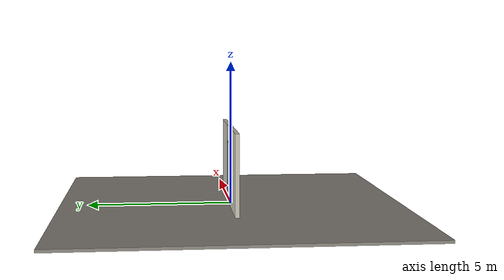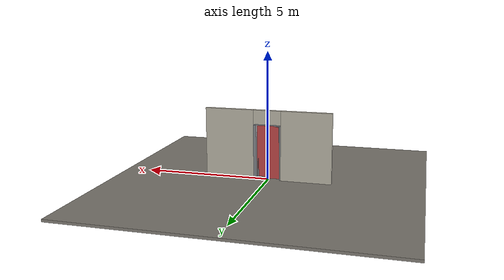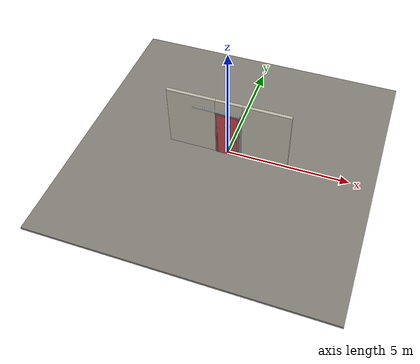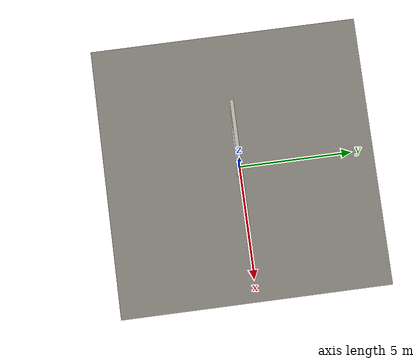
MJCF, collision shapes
<?xml version="1.0" ?>
<mujoco model="db0966_sliding_single_full">
  <compiler angle="radian" meshdir="../../hardware" texturedir="../../textures" autolimits="true" inertiafromgeom="false"/>
  <option timestep="0.002" integrator="implicitfast" cone="elliptic" impratio="10" noslip_iterations="3">
    <flag multiccd="enable"/>
  </option>
  <size memory="16M"/>
  <default>
    <geom condim="4" solref="0.005 1" solimp="0.95 0.99 0.001"/>
    <joint solreflimit="0.005 1" solimplimit="0.95 0.99 0.001"/>
    <tendon solreflimit="0.005 1"/>
    <equality solref="0.002 1"/>
  </default>
  <visual>
    <headlight ambient="0.4 0.4 0.4" diffuse="0.7 0.7 0.7" specular="0.2 0.2 0.2"/>
    <quality shadowsize="4096"/>
    <map znear="0.01" zfar="60"/>
  </visual>
  <asset>
    <mesh name="pull_1e5d69a91a" file="pull_1e5d69a91a.obj"/>
    <material name="mat_floor" rgba="0.55 0.53 0.5 1" specular="0.2" shininess="0.15" reflectance="0"/>
    <material name="mat_wall" rgba="0.78 0.76 0.7 1" specular="0.2" shininess="0.1" reflectance="0"/>
    <material name="mat_frame" rgba="0.55 0.56 0.58 1" specular="0.8" shininess="0.55" reflectance="0.4"/>
    <material name="mat_track" rgba="0.8 0.81 0.83 1" specular="0.8" shininess="0.6" reflectance="0.4"/>
    <material name="mat_leaf" rgba="0.5 0.51 0.53 1" specular="0.23" shininess="0.61" reflectance="0.02"/>
    <material name="mat_roller" rgba="0.65 0.66 0.68 1" specular="0.74" shininess="0.5" reflectance="0.36"/>
    <material name="mat_op_stainless" rgba="0.75 0.76 0.77 1" specular="0.8" shininess="0.65" reflectance="0.4"/>
    <material name="mat_op_steel_galvanized" rgba="0.65 0.66 0.68 1" specular="0.74" shininess="0.5" reflectance="0.36"/>
    <material name="mat_padlock" rgba="0.85 0.66 0.3 1" specular="0.8" shininess="0.75" reflectance="0.4"/>
    <material name="mat_hook" rgba="0.75 0.76 0.77 1" specular="0.8" shininess="0.65" reflectance="0.4"/>
    <material name="mat_placard" rgba="0.95 0.75 0.05 1" specular="0.2" shininess="0.5" reflectance="0"/>
    <texture name="skybox" type="skybox" builtin="gradient" rgb1="0.6 0.7 0.85" rgb2="0.9 0.92 0.95" width="256" height="256"/>
  </asset>
  <worldbody>
    <light name="sun" pos="1.5 -2.5 4" dir="-0.3 0.5 -0.8" directional="true" diffuse="0.8 0.8 0.8" specular="0.3 0.3 0.3" castshadow="true"/>
    <light name="fill" pos="-1.5 2.5 3" dir="0.3 -0.5 -0.7" directional="true" diffuse="0.35 0.35 0.4" castshadow="false"/>
    <camera name="robot_view" pos="0 -2.644375 1.817425" xyaxes="1 0 0 0 0.26963 0.962964" fovy="52"/>
    <camera name="far_view" pos="0 2.644375 1.817425" xyaxes="-1 0 0 0 -0.26963 0.962964" fovy="52"/>
    <camera name="iso" pos="2.009725 -2.221275 2.240525" xyaxes="0.741536 0.670913 0 -0.242917 0.268487 0.932151" fovy="46"/>
    <camera name="detail_handle" pos="0.547 -0.9775 1.23" xyaxes="0.97561 0.219512 0 -0.070934 0.315262 0.94635" fovy="38"/>
    <geom name="floor" type="box" size="6 6 0.05" pos="0 0 -0.05" material="mat_floor" group="0" contype="1" conaffinity="1" friction="0.8 0.005 0.0001" density="2400"/>
    <geom name="wall_left" type="box" size="0.994 0.0725 1.377" pos="-1.506 0 1.377" material="mat_wall" group="0" contype="1" conaffinity="1" friction="0.6 0.005 0.0001" density="800"/>
    <geom name="wall_right" type="box" size="0.964 0.0725 1.377" pos="1.536 0 1.377" material="mat_wall" group="0" contype="1" conaffinity="1" friction="0.6 0.005 0.0001" density="800"/>
    <geom name="wall_header" type="box" size="0.542 0.0725 0.2775" pos="0.03 0 2.4765" material="mat_wall" group="0" contype="1" conaffinity="1" friction="0.6 0.005 0.0001" density="800"/>
    <geom name="jamb_l" type="box" size="0.0225 0.0725 1.077" pos="-0.4895 0 1.077" material="mat_frame" group="0" contype="1" conaffinity="1" friction="0.6 0.005 0.0001" density="300"/>
    <geom name="jamb_head" type="box" size="0.512 0.0725 0.0225" pos="0 0 2.1765" material="mat_frame" group="0" contype="1" conaffinity="1" friction="0.6 0.005 0.0001" density="300"/>
    <geom name="track_header" type="box" size="0.964 0.025 0.04" pos="-0.457 -0.105 2.239" material="mat_track" group="0" contype="1" conaffinity="1" friction="0.6 0.005 0.0001" density="2700"/>
    <geom name="leaf_staple_leg_n" type="box" size="0.003 0.0025 0.0365" pos="0.497 -0.109 1.1375" quat="0.707107 0.707107 0 0" material="mat_op_steel_galvanized" group="0" contype="1" conaffinity="1" friction="0.6 0.005 0.0001" density="7800"/>
    <geom name="leaf_staple_leg_p" type="box" size="0.003 0.0025 0.0365" pos="0.497 -0.109 1.1625" quat="0.707107 0.707107 0 0" material="mat_op_steel_galvanized" group="0" contype="1" conaffinity="1" friction="0.6 0.005 0.0001" density="7800"/>
    <geom name="leaf_staple_bridge" type="box" size="0.003 0.015 0.0025" pos="0.497 -0.143 1.15" quat="0.707107 0.707107 0 0" material="mat_op_steel_galvanized" group="0" contype="1" conaffinity="1" friction="0.6 0.005 0.0001" density="7800"/>
    <geom name="leaf_staple_base" type="box" size="0.016 0.021 0.001" pos="0.497 -0.0735 1.15" quat="0.707107 0.707107 0 0" material="mat_op_steel_galvanized" group="1" contype="0" conaffinity="0" density="7800"/>
    <geom name="jamb_latch_0" type="box" size="0.0525 0.0725 1.077" pos="0.5195 0 1.077" material="mat_frame" group="0" contype="1" conaffinity="1" friction="0.6 0.005 0.0001" density="300"/>
    <geom name="track_header_bracket" type="box" size="0.7712 0.00425 0.032" pos="-0.457 -0.07625 2.239" material="mat_hook" group="1" contype="0" conaffinity="0" density="7850"/>
    <site name="approach_point" pos="0 -1.5 0" quat="1 0 0 0" size="0.05" rgba="0.2 0.9 0.2 0.5" group="4"/>
    <site name="goal_point" pos="0 1.5 0" quat="1 0 0 0" size="0.05" rgba="0.2 0.9 0.2 0.5" group="4"/>
    <site name="door_plane_center" pos="0 0 1.077" quat="1 0 0 0" size="0.02" rgba="0.2 0.9 0.2 0.5" group="4"/>
    <body name="leaf" pos="0 -0.105 0">
      <inertial pos="0.002344 -0.000357 1.08879" mass="85.332981" quat="0.500282 0.499334 -0.500615 0.499768" diaginertia="6.013552258 32.785934532 38.786839054"/>
      <joint name="leaf_slide" type="slide" axis="-1 0 0" limited="true" range="0 0.914" damping="6.272719" frictionloss="58.661479" armature="0.5"/>
      <geom name="leaf_slab_col" type="box" size="0.457 0.0125 1.067" pos="0 0 1.079" material="mat_leaf" group="3" contype="1" conaffinity="1" rgba="0.8 0.3 0.3 0.25" friction="0.45 0.005 0.0001" density="1"/>
      <geom name="leaf_rail_b" type="box" size="0.457 0.0125 0.03" pos="0 0 0.042" material="mat_leaf" group="1" contype="0" conaffinity="0" density="1"/>
      <geom name="leaf_rail_t" type="box" size="0.457 0.0125 0.03" pos="0 0 2.116" material="mat_leaf" group="1" contype="0" conaffinity="0" density="1"/>
      <geom name="leaf_stile_h" type="box" size="0.03 0.0125 1.067" pos="-0.427 0 1.079" material="mat_leaf" group="1" contype="0" conaffinity="0" density="1"/>
      <geom name="leaf_stile_l" type="box" size="0.03 0.0125 1.067" pos="0.427 0 1.079" material="mat_leaf" group="1" contype="0" conaffinity="0" density="1"/>
      <geom name="leaf_bar_0" type="cylinder" size="0.0095 1.007" pos="-0.330833 0 1.079" material="mat_leaf" group="1" contype="0" conaffinity="0" density="1"/>
      <geom name="leaf_bar_1" type="cylinder" size="0.0095 1.007" pos="-0.1985 0 1.079" material="mat_leaf" group="1" contype="0" conaffinity="0" density="1"/>
      <geom name="leaf_bar_2" type="cylinder" size="0.0095 1.007" pos="-0.066167 0 1.079" material="mat_leaf" group="1" contype="0" conaffinity="0" density="1"/>
      <geom name="leaf_bar_3" type="cylinder" size="0.0095 1.007" pos="0.066167 0 1.079" material="mat_leaf" group="1" contype="0" conaffinity="0" density="1"/>
      <geom name="leaf_bar_4" type="cylinder" size="0.0095 1.007" pos="0.1985 0 1.079" material="mat_leaf" group="1" contype="0" conaffinity="0" density="1"/>
      <geom name="leaf_bar_5" type="cylinder" size="0.0095 1.007" pos="0.330833 0 1.079" material="mat_leaf" group="1" contype="0" conaffinity="0" density="1"/>
      <geom name="leaf_crossbar_33" type="box" size="0.397 0.01 0.02" pos="0 0 0.71622" material="mat_leaf" group="1" contype="0" conaffinity="0" density="1"/>
      <geom name="leaf_crossbar_66" type="box" size="0.397 0.01 0.02" pos="0 0 1.42044" material="mat_leaf" group="1" contype="0" conaffinity="0" density="1"/>
      <geom name="leaf_carrier_0" type="box" size="0.02 0.005 0.0545" pos="-0.337 0 2.1405" material="mat_roller" group="1" contype="0" conaffinity="0" density="7850"/>
      <geom name="leaf_carrier_wheel_0" type="cylinder" size="0.014 0.006" pos="-0.337 0 2.185" quat="0.707107 -0.707107 0 0" material="mat_roller" group="1" contype="0" conaffinity="0" density="7850"/>
      <geom name="leaf_carrier_1" type="box" size="0.02 0.005 0.0545" pos="0.337 0 2.1405" material="mat_roller" group="1" contype="0" conaffinity="0" density="7850"/>
      <geom name="leaf_carrier_wheel_1" type="cylinder" size="0.014 0.006" pos="0.337 0 2.185" quat="0.707107 -0.707107 0 0" material="mat_roller" group="1" contype="0" conaffinity="0" density="7850"/>
      <geom name="leaf_pull_n" type="mesh" mesh="pull_1e5d69a91a" pos="0.367 -0.0125 0.95" quat="0.707107 0.707107 0 0" material="mat_op_stainless" group="1" contype="0" conaffinity="0" density="3000"/>
      <geom name="leaf_pull_col_n" type="capsule" size="0.0095 0.08" pos="0.367 -0.0725 0.95" material="mat_op_stainless" group="3" contype="1" conaffinity="1" rgba="0.8 0.3 0.3 0.25" friction="0.7 0.01 0.0001" density="3000"/>
      <geom name="leaf_hasp_plate" type="box" size="0.024 0.0215 0.003" pos="0.377 -0.0155 1.15" quat="0.707107 0.707107 0 0" material="mat_op_steel_galvanized" group="1" contype="0" conaffinity="0" density="7800"/>
      <geom name="warning_placard" type="box" size="0.11 0.001 0.08" pos="0 -0.0135 1.6125" material="mat_placard" group="2" contype="0" conaffinity="0" density="1000"/>
      <site name="leaf_pull_grip_n" pos="0.367 -0.0725 0.95" quat="1 0 0 0" size="0.012" rgba="0.2 0.9 0.2 0.5" group="4"/>
      <site name="leaf_edge_mid" pos="0.457 0 1.079" quat="1 0 0 0" size="0.02" rgba="0.2 0.9 0.2 0.5" group="4"/>
      <body name="leaf_hasp" pos="0.397 -0.0185 1.15">
        <inertial pos="-0.047959 -0.014989 0" mass="0.121392" quat="0.695946 -0.695946 -0.125136 0.125136" diaginertia="0.000013765 0.000190104 0.000203357"/>
        <joint name="leaf_hasp_hinge" type="hinge" axis="0 0 -1" limited="true" range="0 2.9" damping="0.02" frictionloss="0.05" armature="0.005" ref="2.8"/>
        <geom name="leaf_hasp_strap" type="box" size="0.061 0.0175 0.0015" pos="-0.057978 -0.019021 0" quat="0.120185 0.120185 -0.696818 -0.696818" material="mat_op_steel_galvanized" group="0" contype="1" conaffinity="1" friction="0.6 0.005 0.0001" density="7800"/>
        <geom name="leaf_hasp_knuckle" type="cylinder" size="0.0045 0.0215" pos="-0.00134 0.003769 0" quat="0 0.169967 -0.98545 0" material="mat_op_steel_galvanized" group="1" contype="0" conaffinity="0" density="7850"/>
        <site name="leaf_hasp_grip" pos="-0.099457 -0.024747 0" quat="0.169967 0 0 -0.98545" size="0.01" rgba="0.2 0.9 0.2 0.5" group="4"/>
      </body>
    </body>
  </worldbody>
  <sensor>
    <jointpos name="leaf_slide_pos" joint="leaf_slide"/>
    <jointvel name="leaf_slide_vel" joint="leaf_slide"/>
    <jointpos name="leaf_hasp_hinge_pos" joint="leaf_hasp_hinge"/>
    <jointvel name="leaf_hasp_hinge_vel" joint="leaf_hasp_hinge"/>
  </sensor>
</mujoco>
